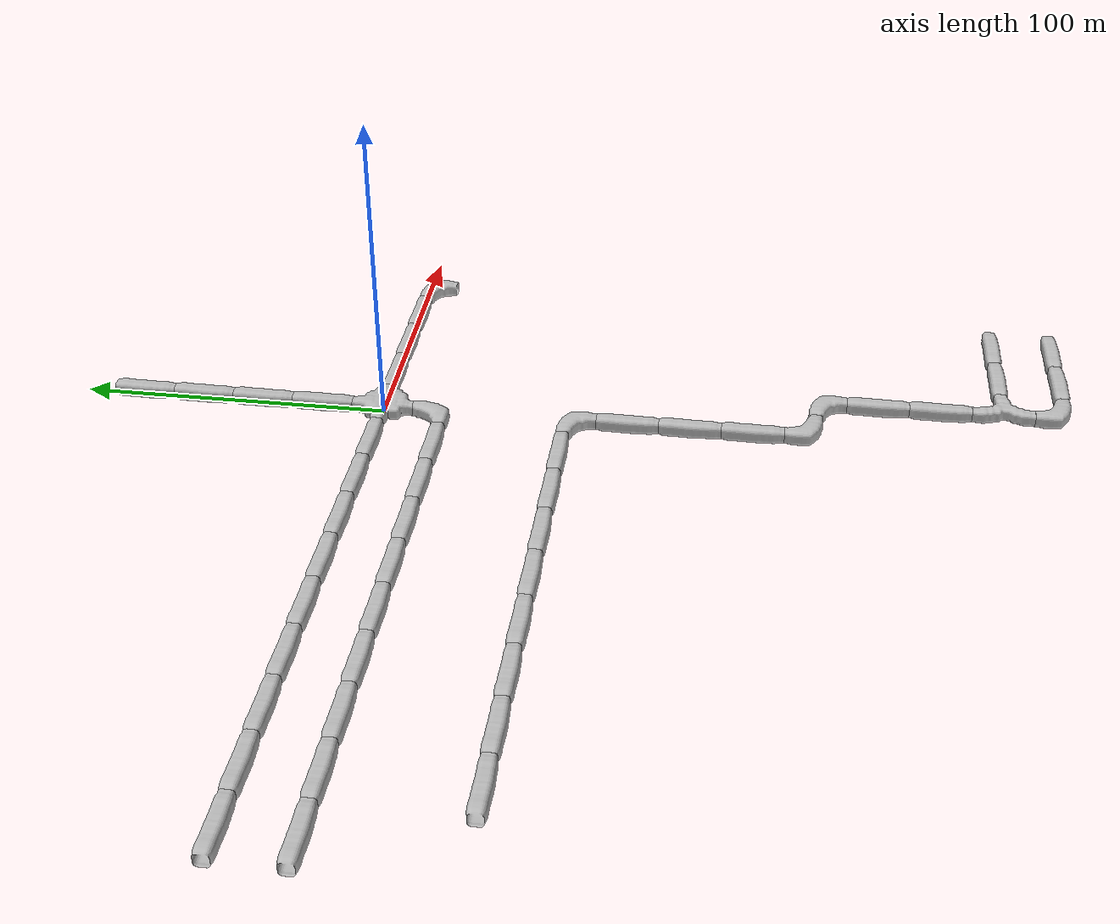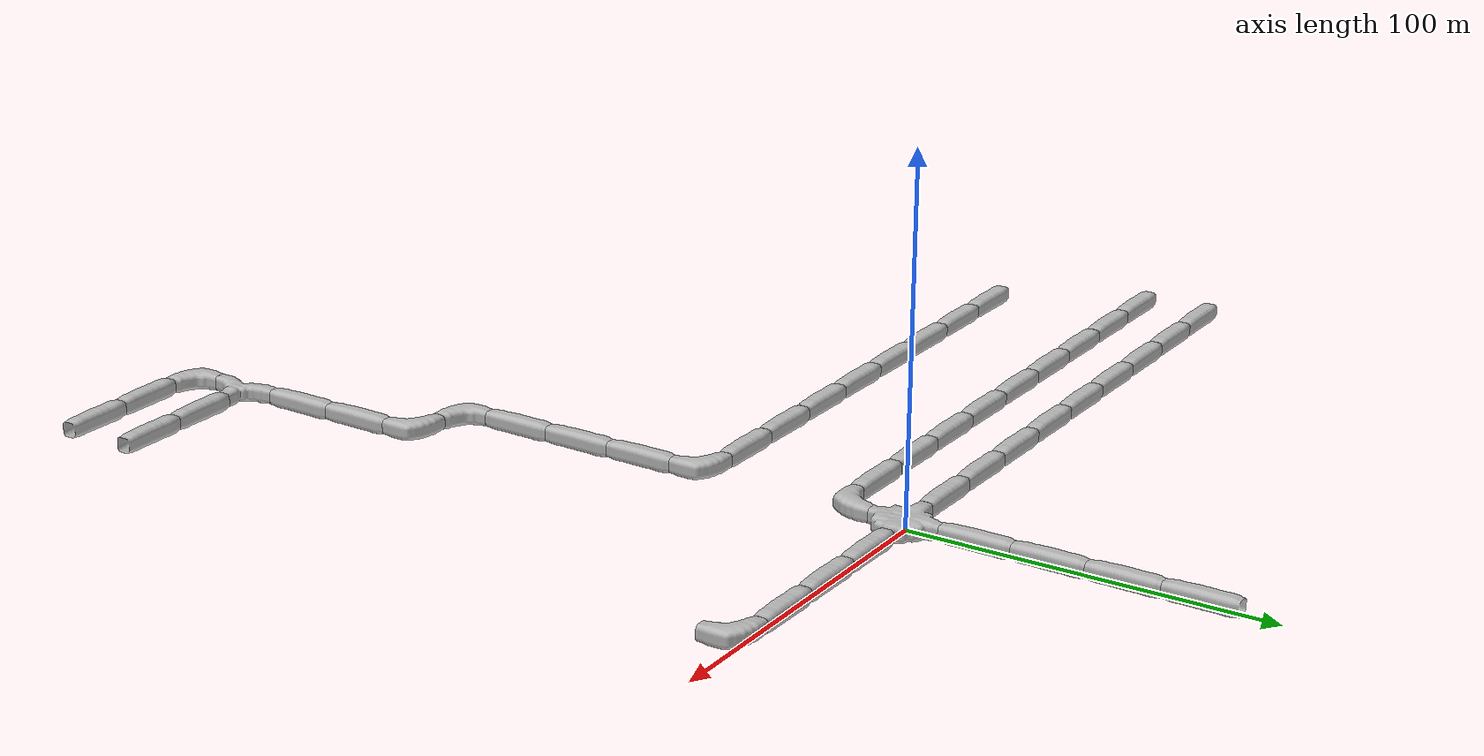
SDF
<sdf version="1.6">
 <world name="cave_16000_2">
  <include>
   <static>true</static>
   <name>cave_0_0</name>
   <pose>0 0 0 0 0 -1.5707963267948966</pose>
   <uri>model://cave_4way_20m</uri>
  </include>
  <include>
   <static>true</static>
   <name>cave_1_0</name>
   <pose>20 0 0 0 0 1.5707963267948966</pose>
   <uri>model://cave_straight_20m</uri>
  </include>
  <include>
   <static>true</static>
   <name>cave_2_0</name>
   <pose>40 0 0 0 0 1.5707963267948966</pose>
   <uri>model://cave_straight_20m</uri>
  </include>
  <include>
   <static>true</static>
   <name>cave_3_0</name>
   <pose>60 0 0 0 0 1.5707963267948966</pose>
   <uri>model://cave_straight_20m</uri>
  </include>
  <include>
   <static>true</static>
   <name>cave_4_0</name>
   <pose>80 0 0 0 0 3.141592653589793</pose>
   <uri>model://cave_L_20m</uri>
  </include>
  <include>
   <static>true</static>
   <name>cave_3_-11</name>
   <pose>60 -220 0 0 0 1.5707963267948966</pose>
   <uri>model://cave_straight_20m</uri>
  </include>
  <include>
   <static>true</static>
   <name>cave_2_-11</name>
   <pose>40 -220 0 0 0 1.5707963267948966</pose>
   <uri>model://cave_straight_20m</uri>
  </include>
  <include>
   <static>true</static>
   <name>cave_1_-11</name>
   <pose>20 -220 0 0 0 0.0</pose>
   <uri>model://cave_L_20m</uri>
  </include>
  <include>
   <static>true</static>
   <name>cave_1_-10</name>
   <pose>20 -200 0 0 0 -1.5707963267948966</pose>
   <uri>model://cave_3way_20m</uri>
  </include>
  <include>
   <static>true</static>
   <name>cave_2_-10</name>
   <pose>40 -200 0 0 0 1.5707963267948966</pose>
   <uri>model://cave_straight_20m</uri>
  </include>
  <include>
   <static>true</static>
   <name>cave_3_-10</name>
   <pose>60 -200 0 0 0 1.5707963267948966</pose>
   <uri>model://cave_straight_20m</uri>
  </include>
  <include>
   <static>true</static>
   <name>cave_1_-9</name>
   <pose>20 -180 0 0 0 0.0</pose>
   <uri>model://cave_straight_20m</uri>
  </include>
  <include>
   <static>true</static>
   <name>cave_1_-8</name>
   <pose>20 -160 0 0 0 0.0</pose>
   <uri>model://cave_straight_20m</uri>
  </include>
  <include>
   <static>true</static>
   <name>cave_1_-7</name>
   <pose>20 -140 0 0 0 3.141592653589793</pose>
   <uri>model://cave_L_20m</uri>
  </include>
  <include>
   <static>true</static>
   <name>cave_0_-7</name>
   <pose>0 -140 0 0 0 0.0</pose>
   <uri>model://cave_L_20m</uri>
  </include>
  <include>
   <static>true</static>
   <name>cave_0_-6</name>
   <pose>0 -120 0 0 0 0.0</pose>
   <uri>model://cave_straight_20m</uri>
  </include>
  <include>
   <static>true</static>
   <name>cave_0_-5</name>
   <pose>0 -100 0 0 0 0.0</pose>
   <uri>model://cave_straight_20m</uri>
  </include>
  <include>
   <static>true</static>
   <name>cave_0_-4</name>
   <pose>0 -80 0 0 0 0.0</pose>
   <uri>model://cave_straight_20m</uri>
  </include>
  <include>
   <static>true</static>
   <name>cave_0_-3</name>
   <pose>0 -60 0 0 0 3.141592653589793</pose>
   <uri>model://cave_L_20m</uri>
  </include>
  <include>
   <static>true</static>
   <name>cave_-1_-3</name>
   <pose>-20 -60 0 0 0 1.5707963267948966</pose>
   <uri>model://cave_straight_20m</uri>
  </include>
  <include>
   <static>true</static>
   <name>cave_-2_-3</name>
   <pose>-40 -60 0 0 0 1.5707963267948966</pose>
   <uri>model://cave_straight_20m</uri>
  </include>
  <include>
   <static>true</static>
   <name>cave_-3_-3</name>
   <pose>-60 -60 0 0 0 1.5707963267948966</pose>
   <uri>model://cave_straight_20m</uri>
  </include>
  <include>
   <static>true</static>
   <name>cave_-4_-3</name>
   <pose>-80 -60 0 0 0 1.5707963267948966</pose>
   <uri>model://cave_straight_20m</uri>
  </include>
  <include>
   <static>true</static>
   <name>cave_-5_-3</name>
   <pose>-100 -60 0 0 0 1.5707963267948966</pose>
   <uri>model://cave_straight_20m</uri>
  </include>
  <include>
   <static>true</static>
   <name>cave_-6_-3</name>
   <pose>-120 -60 0 0 0 1.5707963267948966</pose>
   <uri>model://cave_straight_20m</uri>
  </include>
  <include>
   <static>true</static>
   <name>cave_-7_-3</name>
   <pose>-140 -60 0 0 0 1.5707963267948966</pose>
   <uri>model://cave_straight_20m</uri>
  </include>
  <include>
   <static>true</static>
   <name>cave_-8_-3</name>
   <pose>-160 -60 0 0 0 1.5707963267948966</pose>
   <uri>model://cave_straight_20m</uri>
  </include>
  <include>
   <static>true</static>
   <name>cave_0_-1</name>
   <pose>0 -20 0 0 0 1.5707963267948966</pose>
   <uri>model://cave_L_20m</uri>
  </include>
  <include>
   <static>true</static>
   <name>cave_-1_-1</name>
   <pose>-20 -20 0 0 0 1.5707963267948966</pose>
   <uri>model://cave_straight_20m</uri>
  </include>
  <include>
   <static>true</static>
   <name>cave_-2_-1</name>
   <pose>-40 -20 0 0 0 1.5707963267948966</pose>
   <uri>model://cave_straight_20m</uri>
  </include>
  <include>
   <static>true</static>
   <name>cave_-3_-1</name>
   <pose>-60 -20 0 0 0 1.5707963267948966</pose>
   <uri>model://cave_straight_20m</uri>
  </include>
  <include>
   <static>true</static>
   <name>cave_-4_-1</name>
   <pose>-80 -20 0 0 0 1.5707963267948966</pose>
   <uri>model://cave_straight_20m</uri>
  </include>
  <include>
   <static>true</static>
   <name>cave_-5_-1</name>
   <pose>-100 -20 0 0 0 1.5707963267948966</pose>
   <uri>model://cave_straight_20m</uri>
  </include>
  <include>
   <static>true</static>
   <name>cave_-6_-1</name>
   <pose>-120 -20 0 0 0 1.5707963267948966</pose>
   <uri>model://cave_straight_20m</uri>
  </include>
  <include>
   <static>true</static>
   <name>cave_-7_-1</name>
   <pose>-140 -20 0 0 0 1.5707963267948966</pose>
   <uri>model://cave_straight_20m</uri>
  </include>
  <include>
   <static>true</static>
   <name>cave_-8_-1</name>
   <pose>-160 -20 0 0 0 1.5707963267948966</pose>
   <uri>model://cave_straight_20m</uri>
  </include>
  <include>
   <static>true</static>
   <name>cave_-9_-1</name>
   <pose>-180 -20 0 0 0 1.5707963267948966</pose>
   <uri>model://cave_straight_20m</uri>
  </include>
  <include>
   <static>true</static>
   <name>cave_-1_0</name>
   <pose>-20 0 0 0 0 1.5707963267948966</pose>
   <uri>model://cave_straight_20m</uri>
  </include>
  <include>
   <static>true</static>
   <name>cave_-2_0</name>
   <pose>-40 0 0 0 0 1.5707963267948966</pose>
   <uri>model://cave_straight_20m</uri>
  </include>
  <include>
   <static>true</static>
   <name>cave_-3_0</name>
   <pose>-60 0 0 0 0 1.5707963267948966</pose>
   <uri>model://cave_straight_20m</uri>
  </include>
  <include>
   <static>true</static>
   <name>cave_-4_0</name>
   <pose>-80 0 0 0 0 1.5707963267948966</pose>
   <uri>model://cave_straight_20m</uri>
  </include>
  <include>
   <static>true</static>
   <name>cave_-5_0</name>
   <pose>-100 0 0 0 0 1.5707963267948966</pose>
   <uri>model://cave_straight_20m</uri>
  </include>
  <include>
   <static>true</static>
   <name>cave_-6_0</name>
   <pose>-120 0 0 0 0 1.5707963267948966</pose>
   <uri>model://cave_straight_20m</uri>
  </include>
  <include>
   <static>true</static>
   <name>cave_-7_0</name>
   <pose>-140 0 0 0 0 1.5707963267948966</pose>
   <uri>model://cave_straight_20m</uri>
  </include>
  <include>
   <static>true</static>
   <name>cave_-8_0</name>
   <pose>-160 0 0 0 0 1.5707963267948966</pose>
   <uri>model://cave_straight_20m</uri>
  </include>
  <include>
   <static>true</static>
   <name>cave_-9_0</name>
   <pose>-180 0 0 0 0 1.5707963267948966</pose>
   <uri>model://cave_straight_20m</uri>
  </include>
  <include>
   <static>true</static>
   <name>cave_0_1</name>
   <pose>0 20 0 0 0 0.0</pose>
   <uri>model://cave_straight_20m</uri>
  </include>
  <include>
   <static>true</static>
   <name>cave_0_2</name>
   <pose>0 40 0 0 0 0.0</pose>
   <uri>model://cave_straight_20m</uri>
  </include>
  <include>
   <static>true</static>
   <name>cave_0_3</name>
   <pose>0 60 0 0 0 0.0</pose>
   <uri>model://cave_straight_20m</uri>
  </include>
  <include>
   <static>true</static>
   <name>cave_0_4</name>
   <pose>0 80 0 0 0 0.0</pose>
   <uri>model://cave_straight_20m</uri>
  </include>
 </world>
</sdf>
